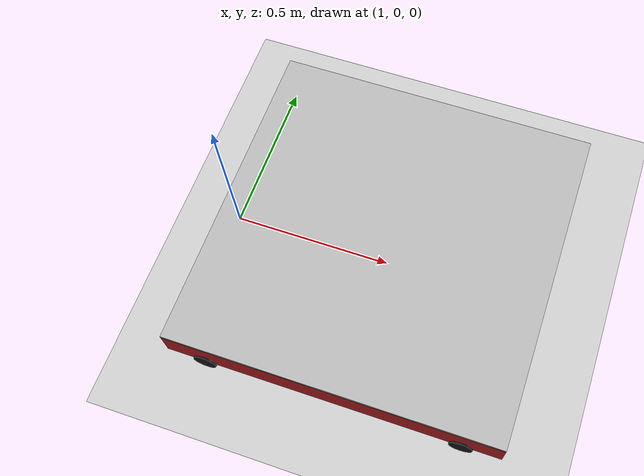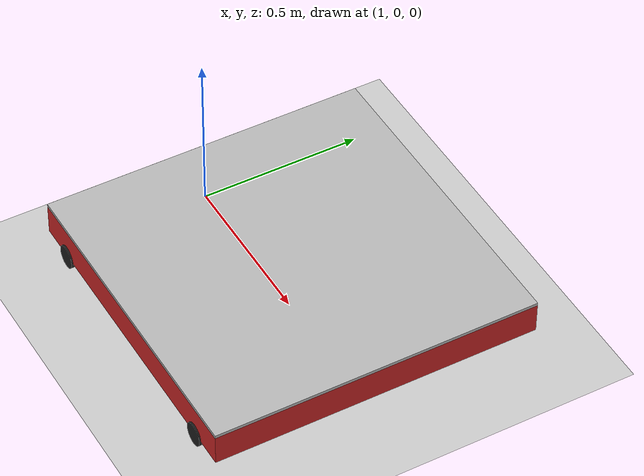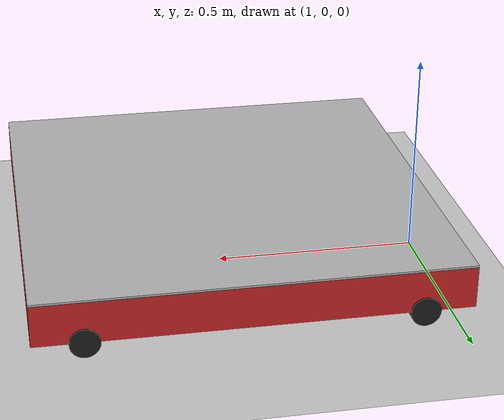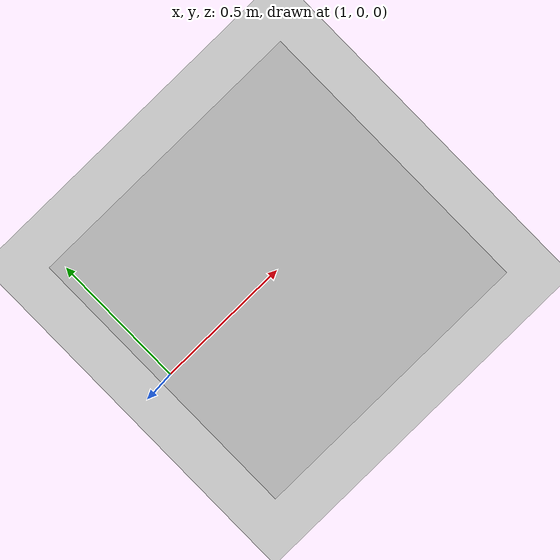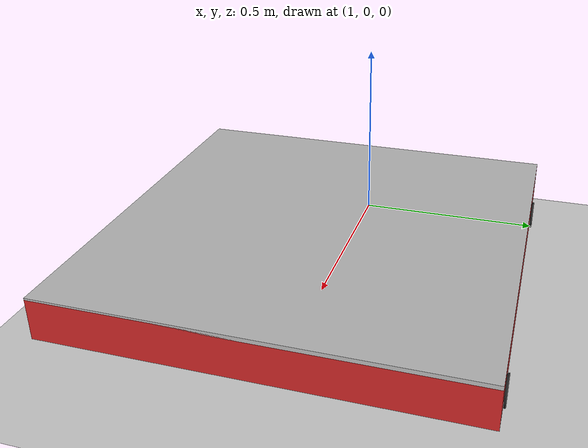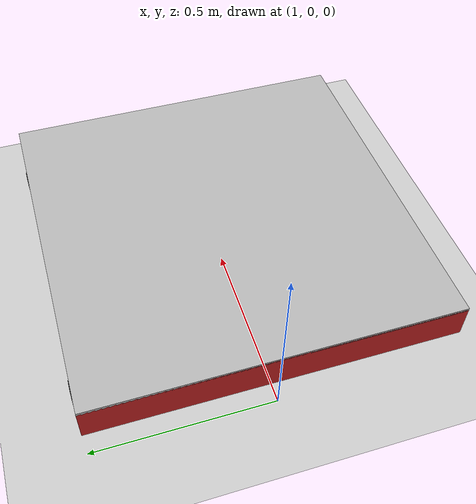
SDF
<?xml version="1.0" ?>
<sdf version="1.5">
  <world name="default">
    <!-- A global light source -->
    <include>
      <uri>model://sun</uri>
    </include>
    <!-- A ground plane -->
    <include>
      <uri>model://ground_plane</uri>
    </include>

    <include>
      <uri>model://landing_car</uri>
    </include>

    <physics name='default_physics' default='0' type='ode'>
      <gravity>0 0 -9.8066</gravity>
      <ode>
        <solver>
          <type>quick</type>
          <iters>10</iters>
          <sor>1.3</sor>
          <use_dynamic_moi_rescaling>0</use_dynamic_moi_rescaling>
        </solver>
        <constraints>
          <cfm>0</cfm>
          <erp>0.2</erp>
          <contact_max_correcting_vel>100</contact_max_correcting_vel>
          <contact_surface_layer>0.001</contact_surface_layer>
        </constraints>
      </ode>
      <max_step_size>0.004</max_step_size>
      <real_time_factor>1</real_time_factor>
      <real_time_update_rate>250</real_time_update_rate>
      <magnetic_field>6.0e-6 2.3e-5 -4.2e-5</magnetic_field>
    </physics>
  </world>
</sdf>

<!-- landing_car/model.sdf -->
<sdf version='1.6'>
  <model name='landing_car'>
  <pose>1.5 0 0.2 0 0 0</pose>

    <link name='base_link'>
      <pose frame=''>0 0 0 0 -0 0</pose>
      <inertial>
        <pose frame=''>9e-06 0 0 0 -0 0</pose>
        <mass>3.3001</mass>
        <inertia>
          <ixx>0.05701</ixx>
          <ixy>0</ixy>
          <ixz>0</ixz>
          <iyy>0.223019</iyy>
          <iyz>0</iyz>
          <izz>0.223019</izz>
        </inertia>
      </inertial>
      <collision name='base_link_collision'>
        <pose frame=''>0 0 0 0 -0 0</pose>
        <geometry>
          <box>
            <size>1 1 0.01</size>
          </box>
        </geometry>
        <surface>
          <contact>
            <ode/>
          </contact>
          <friction>
            <ode/>
          </friction>
        </surface>
      </collision>
      <visual name='base_link_visual'>
        <pose frame=''>0 0 -0.05 0 -0 0</pose>
        <geometry>
          <box>
            <size>1 1 0.1</size>
          </box>
        </geometry>
        <material>
          <script>
            <name>Gazebo/Red</name>
            <uri>file://media/materials/scripts/gazebo.material</uri>
          </script>
        </material>
      </visual>

      <collision name='mark_collision'>
	<pose>0 0 0 0 0 0</pose>
        <geometry>
                <box>
                  <size>1 1 .01</size>
                </box>
        </geometry>
	<surface>
          <contact>
            <ode/>
          </contact>
          <friction>
            <ode/>
          </friction>
        </surface>
      </collision>
      <visual name='mark_visual'>
	<pose>0 0 0 0 0 0</pose>
        <geometry>
                <box>
                  <size>1 1 .01</size>
                </box>
        </geometry>

        <material>
          <script>
            <uri>model://landing_car/materials/scripts</uri>
            <uri>model://landing_car/materials/textures</uri>
            <name>Mark/Diffuse</name>
          </script>
        </material>
      </visual>
    </link>

     <link name='left_wheel1'>
      <pose frame=''>0.3825 0.48 -0.1 -1.5708 0 0</pose>
      <inertial>
        <pose frame=''>0 0 0 0 -0 0</pose>
        <mass>0.1</mass>
        <inertia>
          <ixx>5.1458e-05</ixx>
          <ixy>0</ixy>
          <ixz>0</ixz>
          <iyy>5.1458e-05</iyy>
          <iyz>0</iyz>
          <izz>6.125e-05</izz>
        </inertia>
      </inertial>
      <collision name='left_wheel_collision1'>
        <pose frame=''>0 0 0 0 -0 0</pose>
        <geometry>
          <cylinder>
            <length>0.05</length>
            <radius>0.035</radius>
          </cylinder>
        </geometry>
        <surface>
          <contact>
            <ode/>
          </contact>
          <friction>
            <ode/>
          </friction>
        </surface>
      </collision>
      <visual name='left_wheel_visual1'>
        <pose frame=''>0 0 0 0 -0 0</pose>
        <geometry>
          <cylinder>
            <length>0.05</length>
            <radius>0.035</radius>
          </cylinder>
        </geometry>
        <material>
          <script>
            <name>Gazebo/Black</name>
            <uri>file://media/materials/scripts/gazebo.material</uri>
          </script>
        </material>
      </visual>
      <gravity>1</gravity>
      <velocity_decay/>
    </link>
    <joint name='left_wheel_joint1' type='revolute'>
      <child>left_wheel1</child>
      <parent>base_link</parent>
      <axis>
        <xyz>0 1 -4e-06</xyz>
        <limit>
          <lower>-1e+16</lower>
          <upper>1e+16</upper>
        </limit>
        <dynamics>
          <spring_reference>0</spring_reference>
          <spring_stiffness>0</spring_stiffness>
        </dynamics>
        <use_parent_model_frame>1</use_parent_model_frame>
      </axis>
    </joint>
    <link name='right_wheel1'>
      <pose frame=''>0.3825 -0.48 -0.1 -1.5708 0 0</pose>
      <inertial>
        <pose frame=''>0 0 0 0 -0 0</pose>
        <mass>0.1</mass>
        <inertia>
          <ixx>5.1458e-05</ixx>
          <ixy>0</ixy>
          <ixz>0</ixz>
          <iyy>5.1458e-05</iyy>
          <iyz>0</iyz>
          <izz>6.125e-05</izz>
        </inertia>
      </inertial>
      <collision name='right_wheel_collision1'>
        <pose frame=''>0 0 0 0 -0 0</pose>
        <geometry>
          <cylinder>
            <length>0.05</length>
            <radius>0.035</radius>
          </cylinder>
        </geometry>
        <surface>
          <contact>
            <ode/>
          </contact>
          <friction>
            <ode/>
          </friction>
        </surface>
      </collision>
      <visual name='right_wheel_visual1'>
        <pose frame=''>0 0 0 0 -0 0</pose>
        <geometry>
          <cylinder>
            <length>0.05</length>
            <radius>0.035</radius>
          </cylinder>
        </geometry>
        <material>
          <script>
            <name>Gazebo/Black</name>
            <uri>file://media/materials/scripts/gazebo.material</uri>
          </script>
        </material>
      </visual>
      <gravity>1</gravity>
      <velocity_decay/>
    </link>
    <joint name='right_wheel_joint1' type='revolute'>
      <child>right_wheel1</child>
      <parent>base_link</parent>
      <axis>
        <xyz>0 1 -4e-06</xyz>
        <limit>
          <lower>-1e+16</lower>
          <upper>1e+16</upper>
        </limit>
        <dynamics>
          <spring_reference>0</spring_reference>
          <spring_stiffness>0</spring_stiffness>
        </dynamics>
        <use_parent_model_frame>1</use_parent_model_frame>
      </axis>
    </joint>
    <link name='left_wheel'>
      <pose frame=''>-0.3825 0.48 -0.1 -1.5708 0 0</pose>
      <inertial>
        <pose frame=''>0 0 0 0 -0 0</pose>
        <mass>0.1</mass>
        <inertia>
          <ixx>5.1458e-05</ixx>
          <ixy>0</ixy>
          <ixz>0</ixz>
          <iyy>5.1458e-05</iyy>
          <iyz>0</iyz>
          <izz>6.125e-05</izz>
        </inertia>
      </inertial>
      <collision name='left_wheel_collision'>
        <pose frame=''>0 0 0 0 -0 0</pose>
        <geometry>
          <cylinder>
            <length>0.05</length>
            <radius>0.035</radius>
          </cylinder>
        </geometry>
        <surface>
          <contact>
            <ode/>
          </contact>
          <friction>
            <ode/>
          </friction>
        </surface>
      </collision>
      <visual name='left_wheel_visual'>
        <pose frame=''>0 0 0 0 -0 0</pose>
        <geometry>
          <cylinder>
            <length>0.05</length>
            <radius>0.035</radius>
          </cylinder>
        </geometry>
        <material>
          <script>
            <name>Gazebo/Black</name>
            <uri>file://media/materials/scripts/gazebo.material</uri>
          </script>
        </material>
      </visual>
      <gravity>1</gravity>
      <velocity_decay/>
    </link>
    <joint name='left_wheel_joint' type='revolute'>
      <child>left_wheel</child>
      <parent>base_link</parent>
      <axis>
        <xyz>0 1 -4e-06</xyz>
        <limit>
          <lower>-1e+16</lower>
          <upper>1e+16</upper>
        </limit>
        <dynamics>
          <spring_reference>0</spring_reference>
          <spring_stiffness>0</spring_stiffness>
        </dynamics>
        <use_parent_model_frame>1</use_parent_model_frame>
      </axis>
    </joint>
    <link name='right_wheel'>
      <pose frame=''>-0.3825 -0.48 -0.1 -1.5708 0 0</pose>
      <inertial>
        <pose frame=''>0 0 0 0 -0 0</pose>
        <mass>0.1</mass>
        <inertia>
          <ixx>5.1458e-05</ixx>
          <ixy>0</ixy>
          <ixz>0</ixz>
          <iyy>5.1458e-05</iyy>
          <iyz>0</iyz>
          <izz>6.125e-05</izz>
        </inertia>
      </inertial>
      <collision name='right_wheel_collision'>
        <pose frame=''>0 0 0 0 -0 0</pose>
        <geometry>
          <cylinder>
            <length>0.05</length>
            <radius>0.035</radius>
          </cylinder>
        </geometry>
        <surface>
          <contact>
            <ode/>
          </contact>
          <friction>
            <ode/>
          </friction>
        </surface>
      </collision>
      <visual name='right_wheel_visual'>
        <pose frame=''>0 0 0 0 -0 0</pose>
        <geometry>
          <cylinder>
            <length>0.05</length>
            <radius>0.035</radius>
          </cylinder>
        </geometry>
        <material>
          <script>
            <name>Gazebo/Black</name>
            <uri>file://media/materials/scripts/gazebo.material</uri>
          </script>
        </material>
      </visual>
      <gravity>1</gravity>
      <velocity_decay/>
    </link>
    <joint name='right_wheel_joint' type='revolute'>
      <child>right_wheel</child>
      <parent>base_link</parent>
      <axis>
        <xyz>0 1 -4e-06</xyz>
        <limit>
          <lower>-1e+16</lower>
          <upper>1e+16</upper>
        </limit>
        <dynamics>
          <spring_reference>0</spring_reference>
          <spring_stiffness>0</spring_stiffness>
        </dynamics>
        <use_parent_model_frame>1</use_parent_model_frame>
      </axis>
    </joint>
    <plugin name='differential_drive_controller' filename='libgazebo_ros_diff_drive.so'>
      <leftJoint>right_wheel_joint</leftJoint>
      <rightJoint>left_wheel_joint</rightJoint>
      <robotBaseFrame>base_link</robotBaseFrame>
      <wheelSeparation>0.96</wheelSeparation>
      <wheelDiameter>0.07</wheelDiameter>
      <commandTopic>cmd_vel</commandTopic>
      <legacyMode>1</legacyMode>
      <publishWheelJointState>1</publishWheelJointState>
    </plugin>
    <plugin name="differential_drive_controller" filename="libgazebo_ros_diff_drive.so">
      <leftJoint>right_wheel_joint1</leftJoint>
      <rightJoint>left_wheel_joint1</rightJoint>
      <robotBaseFrame>base_link</robotBaseFrame>
      <wheelSeparation>0.96</wheelSeparation>
      <wheelDiameter>0.07</wheelDiameter>
      <commandTopic>cmd_vel</commandTopic>
      <legacyMode>1</legacyMode>
      <publishWheelJointState>1</publishWheelJointState>
    </plugin>

  </model>
</sdf>
